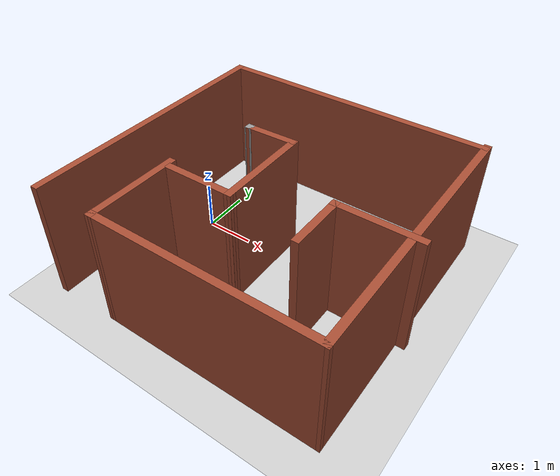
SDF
<?xml version="1.0"?>
<sdf version="1.4">

    <world name="world_name">
        <include>
            <uri>model://ground_plane</uri>
        </include>
        <include>
            <uri>model://sun</uri>
        </include>
        <include>
            <uri>model://floor_plan</uri>

        </include>

    </world>
</sdf>

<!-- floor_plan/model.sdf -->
<sdf version='1.7'>
  <model name='Untitled'>
    <pose>1.96129 -0.343511 0 0 -0 0</pose>
    <link name='Wall_0'>
      <collision name='Wall_0_Collision'>
        <geometry>
          <box>
            <size>5.75 0.15 2.5</size>
          </box>
        </geometry>
        <pose>0 0 1.25 0 -0 0</pose>
      </collision>
      <visual name='Wall_0_Visual'>
        <pose>0 0 1.25 0 -0 0</pose>
        <geometry>
          <box>
            <size>5.75 0.15 2.5</size>
          </box>
        </geometry>
        <material>
          <script>
            <uri>file://media/materials/scripts/gazebo.material</uri>
            <name>Gazebo/Bricks</name>
          </script>
          <ambient>1 1 1 1</ambient>
        </material>
        <meta>
          <layer>0</layer>
        </meta>
      </visual>
      <pose>-2.97908 -0.016002 0 0 -0 1.5708</pose>
    </link>
    <link name='Wall_1'>
      <collision name='Wall_1_Collision'>
        <geometry>
          <box>
            <size>5.90403 0.15 2.5</size>
          </box>
        </geometry>
        <pose>0 0 1.25 0 -0 0</pose>
      </collision>
      <visual name='Wall_1_Visual'>
        <pose>0 0 1.25 0 -0 0</pose>
        <geometry>
          <box>
            <size>5.90403 0.15 2.5</size>
          </box>
        </geometry>
        <material>
          <script>
            <uri>file://media/materials/scripts/gazebo.material</uri>
            <name>Gazebo/Bricks</name>
          </script>
          <ambient>1 1 1 1</ambient>
        </material>
        <meta>
          <layer>0</layer>
        </meta>
      </visual>
      <pose>-0.10209 2.7734 0 0 -0 -0.003684</pose>
    </link>
    <link name='Wall_12'>
      <collision name='Wall_12_Collision'>
        <geometry>
          <box>
            <size>2 0.15 2.5</size>
          </box>
        </geometry>
        <pose>0 0 1.25 0 -0 0</pose>
      </collision>
      <visual name='Wall_12_Visual'>
        <pose>0 0 1.25 0 -0 0</pose>
        <geometry>
          <box>
            <size>2 0.15 2.5</size>
          </box>
        </geometry>
        <material>
          <script>
            <uri>file://media/materials/scripts/gazebo.material</uri>
            <name>Gazebo/Bricks</name>
          </script>
          <ambient>1 1 1 1</ambient>
        </material>
        <meta>
          <layer>0</layer>
        </meta>
      </visual>
      <pose>-1.6549 -1.8644 0 0 -0 1.5708</pose>
    </link>
    <link name='Wall_16'>
      <collision name='Wall_16_Collision'>
        <geometry>
          <box>
            <size>1.75 0.15 2.5</size>
          </box>
        </geometry>
        <pose>0 0 1.25 0 -0 0</pose>
      </collision>
      <visual name='Wall_16_Visual'>
        <pose>0 0 1.25 0 -0 0</pose>
        <geometry>
          <box>
            <size>1.75 0.15 2.5</size>
          </box>
        </geometry>
        <material>
          <script>
            <uri>file://media/materials/scripts/gazebo.material</uri>
            <name>Gazebo/Bricks</name>
          </script>
          <ambient>1 1 1 1</ambient>
        </material>
        <meta>
          <layer>0</layer>
        </meta>
      </visual>
      <pose>2.17936 -0.262383 0 0 -0 3.14159</pose>
    </link>
    <link name='Wall_17'>
      <collision name='Wall_17_Collision'>
        <geometry>
          <box>
            <size>1.25 0.15 2.5</size>
          </box>
        </geometry>
        <pose>0 0 1.25 0 -0 0</pose>
      </collision>
      <visual name='Wall_17_Visual'>
        <pose>0 0 1.25 0 -0 0</pose>
        <geometry>
          <box>
            <size>1.25 0.15 2.5</size>
          </box>
        </geometry>
        <material>
          <script>
            <uri>file://media/materials/scripts/gazebo.material</uri>
            <name>Gazebo/Bricks</name>
          </script>
          <ambient>1 1 1 1</ambient>
        </material>
        <meta>
          <layer>0</layer>
        </meta>
      </visual>
      <pose>1.37936 -0.812383 0 0 -0 -1.5708</pose>
    </link>
    <link name='Wall_2'>
      <collision name='Wall_2_Collision'>
        <geometry>
          <box>
            <size>5.75 0.15 2.5</size>
          </box>
        </geometry>
        <pose>0 0 1.25 0 -0 0</pose>
      </collision>
      <visual name='Wall_2_Visual'>
        <pose>0 0 1.25 0 -0 0</pose>
        <geometry>
          <box>
            <size>5.75 0.15 2.5</size>
          </box>
        </geometry>
        <material>
          <script>
            <uri>file://media/materials/scripts/gazebo.material</uri>
            <name>Gazebo/Bricks</name>
          </script>
          <ambient>1 1 1 1</ambient>
        </material>
        <meta>
          <layer>0</layer>
        </meta>
      </visual>
      <pose>2.8015 0.016002 0 0 -0 -1.5708</pose>
    </link>
    <link name='Wall_3'>
      <collision name='Wall_3_Collision'>
        <geometry>
          <box>
            <size>4.6064 0.15 2.5</size>
          </box>
        </geometry>
        <pose>0 0 1.25 0 -0 0</pose>
      </collision>
      <visual name='Wall_3_Visual'>
        <pose>0 0 1.25 0 -0 0</pose>
        <geometry>
          <box>
            <size>4.6064 0.15 2.5</size>
          </box>
        </geometry>
        <material>
          <script>
            <uri>file://media/materials/scripts/gazebo.material</uri>
            <name>Gazebo/Bricks</name>
          </script>
          <ambient>1 1 1 1</ambient>
        </material>
        <meta>
          <layer>0</layer>
        </meta>
      </visual>
      <pose>0.573303 -2.7867 0 0 -0 -3.14038</pose>
    </link>
    <link name='Wall_5'>
      <collision name='Wall_5_Collision'>
        <geometry>
          <box>
            <size>1.5 0.15 2.5</size>
          </box>
        </geometry>
        <pose>0 0 1.25 0 -0 0</pose>
      </collision>
      <visual name='Wall_5_Visual'>
        <pose>0 0 1.25 0 -0 0</pose>
        <geometry>
          <box>
            <size>1.5 0.15 2.5</size>
          </box>
        </geometry>
        <material>
          <script>
            <uri>file://media/materials/scripts/gazebo.material</uri>
            <name>Gazebo/Bricks</name>
          </script>
          <ambient>1 1 1 1</ambient>
        </material>
        <meta>
          <layer>0</layer>
        </meta>
      </visual>
      <pose>-0.862898 -1.067 0 0 -0 0</pose>
    </link>
    <link name='Wall_6'>
      <collision name='Wall_6_Collision'>
        <geometry>
          <box>
            <size>2.07998 0.15 2.5</size>
          </box>
        </geometry>
        <pose>0 0 1.25 0 -0 0</pose>
      </collision>
      <visual name='Wall_6_Visual'>
        <pose>0 0 1.25 0 -0 0</pose>
        <geometry>
          <box>
            <size>2.07998 0.15 2.5</size>
          </box>
        </geometry>
        <material>
          <script>
            <uri>file://media/materials/scripts/gazebo.material</uri>
            <name>Gazebo/Bricks</name>
          </script>
          <ambient>1 1 1 1</ambient>
        </material>
        <meta>
          <layer>0</layer>
        </meta>
      </visual>
      <pose>-0.201198 -0.102099 0 0 -0 1.58458</pose>
    </link>
    <link name='Wall_7'>
      <collision name='Wall_7_Collision'>
        <geometry>
          <box>
            <size>1.09078 0.15 2.5</size>
          </box>
        </geometry>
        <pose>0 0 1.25 0 -0 0</pose>
      </collision>
      <visual name='Wall_7_Visual'>
        <pose>0 0 1.25 0 -0 0</pose>
        <geometry>
          <box>
            <size>1.09078 0.15 2.5</size>
          </box>
        </geometry>
        <material>
          <script>
            <uri>file://media/materials/scripts/gazebo.material</uri>
            <name>Gazebo/Bricks</name>
          </script>
          <ambient>1 1 1 1</ambient>
        </material>
        <meta>
          <layer>0</layer>
        </meta>
      </visual>
      <pose>-0.711298 0.849502 0 0 -0 -3.11331</pose>
    </link>
    <link name='Wall_8'>
      <collision name='Wall_8_Collision'>
        <geometry>
          <box>
            <size>0.15 0.15 2.5</size>
          </box>
        </geometry>
        <pose>0 0 1.25 0 -0 0</pose>
      </collision>
      <visual name='Wall_8_Visual'>
        <pose>0 0 1.25 0 -0 0</pose>
        <geometry>
          <box>
            <size>0.15 0.15 2.5</size>
          </box>
        </geometry>
        <material>
          <script>
            <uri>file://media/materials/scripts/gazebo.material</uri>
            <name>Gazebo/Grey</name>
          </script>
          <ambient>1 1 1 1</ambient>
        </material>
        <meta>
          <layer>0</layer>
        </meta>
      </visual>
      <pose>-1.2081 0.836201 0 0 -0 0</pose>
    </link>
    <static>1</static>
  </model>
</sdf>
